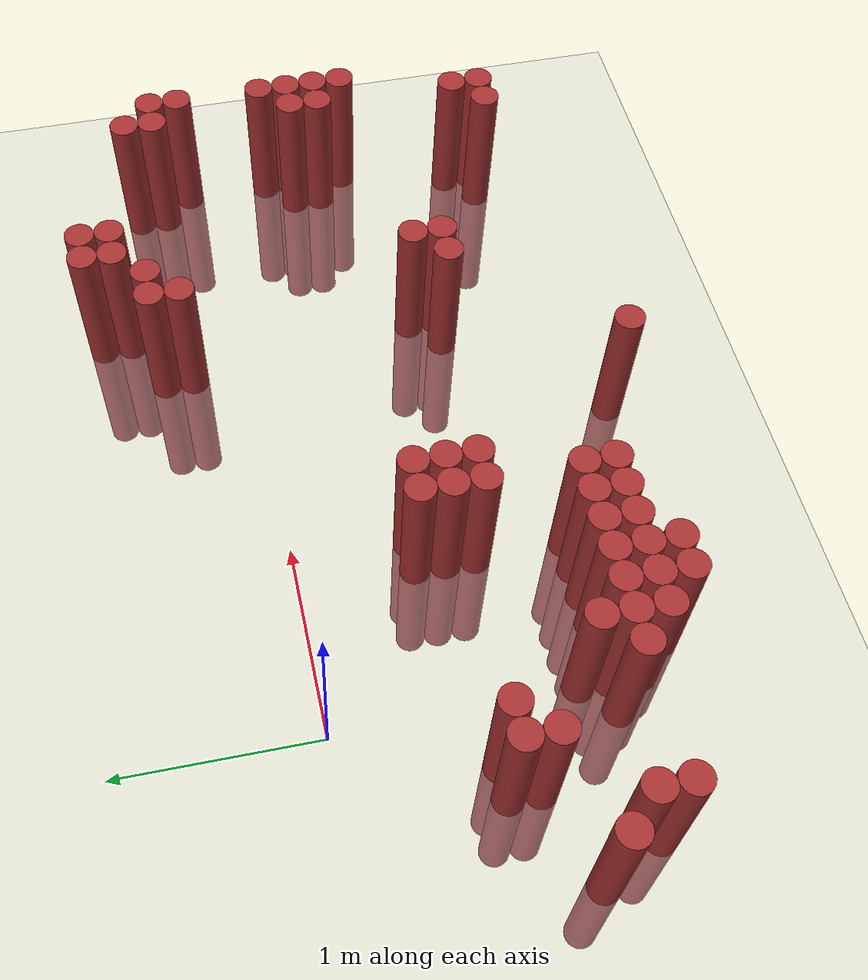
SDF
<sdf version="1.6">
 <world name="default">
  <model name="ground_plane">
   <static>1</static>
   <link name="link">
    <collision name="collision">
     <geometry><plane><normal>0 0 1</normal><size>100 100</size></plane></geometry>
     <surface><friction><ode><mu>100</mu><mu2>50</mu2></ode></friction></surface>
    </collision>
    <visual name="visual">
     <cast_shadows>0</cast_shadows>
     <geometry><plane><normal>0 0 1</normal><size>100 100</size></plane></geometry>
     <material>
      <script><uri>file://media/materials/scripts/gazebo.material</uri><name>Gazebo/Grey</name></script>
     </material>
    </visual>
   </link>
  </model>
  <model name="unit_cylinder_321">
   <static>1</static>
   <pose>-0.875000 -1.025000 0.000000 0.000000 0.000000 0.000000</pose>
   <link name="link">
    <inertial>
     <mass>1</mass>
     <inertia><ixx>0.145833</ixx><ixy>0</ixy><ixz>0</ixz><iyy>0.145833</iyy><iyz>0</iyz><izz>0.125</izz></inertia>
    </inertial>
    <collision name="collision">
     <geometry><cylinder><radius>0.075000</radius><length>1.5</length></cylinder></geometry>
    </collision>
    <visual name="visual">
     <geometry><cylinder><radius>0.075000</radius><length>1.5</length></cylinder></geometry>
     <material>
      <ambient>0.648000 0.192000 0.192000 1</ambient>
      <diffuse>0.648000 0.192000 0.192000 1</diffuse>
     </material>
     <material>
      <script><name>Gazebo/Grey</name><uri>file://media/materials/scripts/gazebo.material</uri></script>
     </material>
    </visual>
   </link>
  </model>
  <model name="unit_cylinder_324">
   <static>1</static>
   <pose>-0.725000 -1.325000 0.000000 0.000000 0.000000 0.000000</pose>
   <link name="link">
    <inertial>
     <mass>1</mass>
     <inertia><ixx>0.145833</ixx><ixy>0</ixy><ixz>0</ixz><iyy>0.145833</iyy><iyz>0</iyz><izz>0.125</izz></inertia>
    </inertial>
    <collision name="collision">
     <geometry><cylinder><radius>0.075000</radius><length>1.5</length></cylinder></geometry>
    </collision>
    <visual name="visual">
     <geometry><cylinder><radius>0.075000</radius><length>1.5</length></cylinder></geometry>
     <material>
      <ambient>0.648000 0.192000 0.192000 1</ambient>
      <diffuse>0.648000 0.192000 0.192000 1</diffuse>
     </material>
     <material>
      <script><name>Gazebo/Grey</name><uri>file://media/materials/scripts/gazebo.material</uri></script>
     </material>
    </visual>
   </link>
  </model>
  <model name="unit_cylinder_325">
   <static>1</static>
   <pose>-0.725000 -1.175000 0.000000 0.000000 0.000000 0.000000</pose>
   <link name="link">
    <inertial>
     <mass>1</mass>
     <inertia><ixx>0.145833</ixx><ixy>0</ixy><ixz>0</ixz><iyy>0.145833</iyy><iyz>0</iyz><izz>0.125</izz></inertia>
    </inertial>
    <collision name="collision">
     <geometry><cylinder><radius>0.075000</radius><length>1.5</length></cylinder></geometry>
    </collision>
    <visual name="visual">
     <geometry><cylinder><radius>0.075000</radius><length>1.5</length></cylinder></geometry>
     <material>
      <ambient>0.648000 0.192000 0.192000 1</ambient>
      <diffuse>0.648000 0.192000 0.192000 1</diffuse>
     </material>
     <material>
      <script><name>Gazebo/Grey</name><uri>file://media/materials/scripts/gazebo.material</uri></script>
     </material>
    </visual>
   </link>
  </model>
  <model name="unit_cylinder_328">
   <static>1</static>
   <pose>-0.425000 -0.875000 0.000000 0.000000 0.000000 0.000000</pose>
   <link name="link">
    <inertial>
     <mass>1</mass>
     <inertia><ixx>0.145833</ixx><ixy>0</ixy><ixz>0</ixz><iyy>0.145833</iyy><iyz>0</iyz><izz>0.125</izz></inertia>
    </inertial>
    <collision name="collision">
     <geometry><cylinder><radius>0.075000</radius><length>1.5</length></cylinder></geometry>
    </collision>
    <visual name="visual">
     <geometry><cylinder><radius>0.075000</radius><length>1.5</length></cylinder></geometry>
     <material>
      <ambient>0.648000 0.192000 0.192000 1</ambient>
      <diffuse>0.648000 0.192000 0.192000 1</diffuse>
     </material>
     <material>
      <script><name>Gazebo/Grey</name><uri>file://media/materials/scripts/gazebo.material</uri></script>
     </material>
    </visual>
   </link>
  </model>
  <model name="unit_cylinder_329">
   <static>1</static>
   <pose>-0.425000 -0.725000 0.000000 0.000000 0.000000 0.000000</pose>
   <link name="link">
    <inertial>
     <mass>1</mass>
     <inertia><ixx>0.145833</ixx><ixy>0</ixy><ixz>0</ixz><iyy>0.145833</iyy><iyz>0</iyz><izz>0.125</izz></inertia>
    </inertial>
    <collision name="collision">
     <geometry><cylinder><radius>0.075000</radius><length>1.5</length></cylinder></geometry>
    </collision>
    <visual name="visual">
     <geometry><cylinder><radius>0.075000</radius><length>1.5</length></cylinder></geometry>
     <material>
      <ambient>0.648000 0.192000 0.192000 1</ambient>
      <diffuse>0.648000 0.192000 0.192000 1</diffuse>
     </material>
     <material>
      <script><name>Gazebo/Grey</name><uri>file://media/materials/scripts/gazebo.material</uri></script>
     </material>
    </visual>
   </link>
  </model>
  <model name="unit_cylinder_332">
   <static>1</static>
   <pose>-0.275000 -0.725000 0.000000 0.000000 0.000000 0.000000</pose>
   <link name="link">
    <inertial>
     <mass>1</mass>
     <inertia><ixx>0.145833</ixx><ixy>0</ixy><ixz>0</ixz><iyy>0.145833</iyy><iyz>0</iyz><izz>0.125</izz></inertia>
    </inertial>
    <collision name="collision">
     <geometry><cylinder><radius>0.075000</radius><length>1.5</length></cylinder></geometry>
    </collision>
    <visual name="visual">
     <geometry><cylinder><radius>0.075000</radius><length>1.5</length></cylinder></geometry>
     <material>
      <ambient>0.648000 0.192000 0.192000 1</ambient>
      <diffuse>0.648000 0.192000 0.192000 1</diffuse>
     </material>
     <material>
      <script><name>Gazebo/Grey</name><uri>file://media/materials/scripts/gazebo.material</uri></script>
     </material>
    </visual>
   </link>
  </model>
  <model name="unit_cylinder_336">
   <static>1</static>
   <pose>-0.125000 -1.325000 0.000000 0.000000 0.000000 0.000000</pose>
   <link name="link">
    <inertial>
     <mass>1</mass>
     <inertia><ixx>0.145833</ixx><ixy>0</ixy><ixz>0</ixz><iyy>0.145833</iyy><iyz>0</iyz><izz>0.125</izz></inertia>
    </inertial>
    <collision name="collision">
     <geometry><cylinder><radius>0.075000</radius><length>1.5</length></cylinder></geometry>
    </collision>
    <visual name="visual">
     <geometry><cylinder><radius>0.075000</radius><length>1.5</length></cylinder></geometry>
     <material>
      <ambient>0.648000 0.192000 0.192000 1</ambient>
      <diffuse>0.648000 0.192000 0.192000 1</diffuse>
     </material>
     <material>
      <script><name>Gazebo/Grey</name><uri>file://media/materials/scripts/gazebo.material</uri></script>
     </material>
    </visual>
   </link>
  </model>
  <model name="unit_cylinder_339">
   <static>1</static>
   <pose>0.025000 -1.475000 0.000000 0.000000 0.000000 0.000000</pose>
   <link name="link">
    <inertial>
     <mass>1</mass>
     <inertia><ixx>0.145833</ixx><ixy>0</ixy><ixz>0</ixz><iyy>0.145833</iyy><iyz>0</iyz><izz>0.125</izz></inertia>
    </inertial>
    <collision name="collision">
     <geometry><cylinder><radius>0.075000</radius><length>1.5</length></cylinder></geometry>
    </collision>
    <visual name="visual">
     <geometry><cylinder><radius>0.075000</radius><length>1.5</length></cylinder></geometry>
     <material>
      <ambient>0.648000 0.192000 0.192000 1</ambient>
      <diffuse>0.648000 0.192000 0.192000 1</diffuse>
     </material>
     <material>
      <script><name>Gazebo/Grey</name><uri>file://media/materials/scripts/gazebo.material</uri></script>
     </material>
    </visual>
   </link>
  </model>
  <model name="unit_cylinder_340">
   <static>1</static>
   <pose>0.025000 -1.325000 0.000000 0.000000 0.000000 0.000000</pose>
   <link name="link">
    <inertial>
     <mass>1</mass>
     <inertia><ixx>0.145833</ixx><ixy>0</ixy><ixz>0</ixz><iyy>0.145833</iyy><iyz>0</iyz><izz>0.125</izz></inertia>
    </inertial>
    <collision name="collision">
     <geometry><cylinder><radius>0.075000</radius><length>1.5</length></cylinder></geometry>
    </collision>
    <visual name="visual">
     <geometry><cylinder><radius>0.075000</radius><length>1.5</length></cylinder></geometry>
     <material>
      <ambient>0.648000 0.192000 0.192000 1</ambient>
      <diffuse>0.648000 0.192000 0.192000 1</diffuse>
     </material>
     <material>
      <script><name>Gazebo/Grey</name><uri>file://media/materials/scripts/gazebo.material</uri></script>
     </material>
    </visual>
   </link>
  </model>
  <model name="unit_cylinder_341">
   <static>1</static>
   <pose>0.025000 -1.175000 0.000000 0.000000 0.000000 0.000000</pose>
   <link name="link">
    <inertial>
     <mass>1</mass>
     <inertia><ixx>0.145833</ixx><ixy>0</ixy><ixz>0</ixz><iyy>0.145833</iyy><iyz>0</iyz><izz>0.125</izz></inertia>
    </inertial>
    <collision name="collision">
     <geometry><cylinder><radius>0.075000</radius><length>1.5</length></cylinder></geometry>
    </collision>
    <visual name="visual">
     <geometry><cylinder><radius>0.075000</radius><length>1.5</length></cylinder></geometry>
     <material>
      <ambient>0.648000 0.192000 0.192000 1</ambient>
      <diffuse>0.648000 0.192000 0.192000 1</diffuse>
     </material>
     <material>
      <script><name>Gazebo/Grey</name><uri>file://media/materials/scripts/gazebo.material</uri></script>
     </material>
    </visual>
   </link>
  </model>
  <model name="unit_cylinder_345">
   <static>1</static>
   <pose>0.175000 -1.625000 0.000000 0.000000 0.000000 0.000000</pose>
   <link name="link">
    <inertial>
     <mass>1</mass>
     <inertia><ixx>0.145833</ixx><ixy>0</ixy><ixz>0</ixz><iyy>0.145833</iyy><iyz>0</iyz><izz>0.125</izz></inertia>
    </inertial>
    <collision name="collision">
     <geometry><cylinder><radius>0.075000</radius><length>1.5</length></cylinder></geometry>
    </collision>
    <visual name="visual">
     <geometry><cylinder><radius>0.075000</radius><length>1.5</length></cylinder></geometry>
     <material>
      <ambient>0.648000 0.192000 0.192000 1</ambient>
      <diffuse>0.648000 0.192000 0.192000 1</diffuse>
     </material>
     <material>
      <script><name>Gazebo/Grey</name><uri>file://media/materials/scripts/gazebo.material</uri></script>
     </material>
    </visual>
   </link>
  </model>
  <model name="unit_cylinder_346">
   <static>1</static>
   <pose>0.175000 -1.475000 0.000000 0.000000 0.000000 0.000000</pose>
   <link name="link">
    <inertial>
     <mass>1</mass>
     <inertia><ixx>0.145833</ixx><ixy>0</ixy><ixz>0</ixz><iyy>0.145833</iyy><iyz>0</iyz><izz>0.125</izz></inertia>
    </inertial>
    <collision name="collision">
     <geometry><cylinder><radius>0.075000</radius><length>1.5</length></cylinder></geometry>
    </collision>
    <visual name="visual">
     <geometry><cylinder><radius>0.075000</radius><length>1.5</length></cylinder></geometry>
     <material>
      <ambient>0.648000 0.192000 0.192000 1</ambient>
      <diffuse>0.648000 0.192000 0.192000 1</diffuse>
     </material>
     <material>
      <script><name>Gazebo/Grey</name><uri>file://media/materials/scripts/gazebo.material</uri></script>
     </material>
    </visual>
   </link>
  </model>
  <model name="unit_cylinder_347">
   <static>1</static>
   <pose>0.175000 -1.325000 0.000000 0.000000 0.000000 0.000000</pose>
   <link name="link">
    <inertial>
     <mass>1</mass>
     <inertia><ixx>0.145833</ixx><ixy>0</ixy><ixz>0</ixz><iyy>0.145833</iyy><iyz>0</iyz><izz>0.125</izz></inertia>
    </inertial>
    <collision name="collision">
     <geometry><cylinder><radius>0.075000</radius><length>1.5</length></cylinder></geometry>
    </collision>
    <visual name="visual">
     <geometry><cylinder><radius>0.075000</radius><length>1.5</length></cylinder></geometry>
     <material>
      <ambient>0.648000 0.192000 0.192000 1</ambient>
      <diffuse>0.648000 0.192000 0.192000 1</diffuse>
     </material>
     <material>
      <script><name>Gazebo/Grey</name><uri>file://media/materials/scripts/gazebo.material</uri></script>
     </material>
    </visual>
   </link>
  </model>
  <model name="unit_cylinder_352">
   <static>1</static>
   <pose>0.325000 -1.625000 0.000000 0.000000 0.000000 0.000000</pose>
   <link name="link">
    <inertial>
     <mass>1</mass>
     <inertia><ixx>0.145833</ixx><ixy>0</ixy><ixz>0</ixz><iyy>0.145833</iyy><iyz>0</iyz><izz>0.125</izz></inertia>
    </inertial>
    <collision name="collision">
     <geometry><cylinder><radius>0.075000</radius><length>1.5</length></cylinder></geometry>
    </collision>
    <visual name="visual">
     <geometry><cylinder><radius>0.075000</radius><length>1.5</length></cylinder></geometry>
     <material>
      <ambient>0.648000 0.192000 0.192000 1</ambient>
      <diffuse>0.648000 0.192000 0.192000 1</diffuse>
     </material>
     <material>
      <script><name>Gazebo/Grey</name><uri>file://media/materials/scripts/gazebo.material</uri></script>
     </material>
    </visual>
   </link>
  </model>
  <model name="unit_cylinder_353">
   <static>1</static>
   <pose>0.325000 -1.475000 0.000000 0.000000 0.000000 0.000000</pose>
   <link name="link">
    <inertial>
     <mass>1</mass>
     <inertia><ixx>0.145833</ixx><ixy>0</ixy><ixz>0</ixz><iyy>0.145833</iyy><iyz>0</iyz><izz>0.125</izz></inertia>
    </inertial>
    <collision name="collision">
     <geometry><cylinder><radius>0.075000</radius><length>1.5</length></cylinder></geometry>
    </collision>
    <visual name="visual">
     <geometry><cylinder><radius>0.075000</radius><length>1.5</length></cylinder></geometry>
     <material>
      <ambient>0.648000 0.192000 0.192000 1</ambient>
      <diffuse>0.648000 0.192000 0.192000 1</diffuse>
     </material>
     <material>
      <script><name>Gazebo/Grey</name><uri>file://media/materials/scripts/gazebo.material</uri></script>
     </material>
    </visual>
   </link>
  </model>
  <model name="unit_cylinder_354">
   <static>1</static>
   <pose>0.325000 -1.325000 0.000000 0.000000 0.000000 0.000000</pose>
   <link name="link">
    <inertial>
     <mass>1</mass>
     <inertia><ixx>0.145833</ixx><ixy>0</ixy><ixz>0</ixz><iyy>0.145833</iyy><iyz>0</iyz><izz>0.125</izz></inertia>
    </inertial>
    <collision name="collision">
     <geometry><cylinder><radius>0.075000</radius><length>1.5</length></cylinder></geometry>
    </collision>
    <visual name="visual">
     <geometry><cylinder><radius>0.075000</radius><length>1.5</length></cylinder></geometry>
     <material>
      <ambient>0.648000 0.192000 0.192000 1</ambient>
      <diffuse>0.648000 0.192000 0.192000 1</diffuse>
     </material>
     <material>
      <script><name>Gazebo/Grey</name><uri>file://media/materials/scripts/gazebo.material</uri></script>
     </material>
    </visual>
   </link>
  </model>
  <model name="unit_cylinder_360">
   <static>1</static>
   <pose>0.475000 -1.475000 0.000000 0.000000 0.000000 0.000000</pose>
   <link name="link">
    <inertial>
     <mass>1</mass>
     <inertia><ixx>0.145833</ixx><ixy>0</ixy><ixz>0</ixz><iyy>0.145833</iyy><iyz>0</iyz><izz>0.125</izz></inertia>
    </inertial>
    <collision name="collision">
     <geometry><cylinder><radius>0.075000</radius><length>1.5</length></cylinder></geometry>
    </collision>
    <visual name="visual">
     <geometry><cylinder><radius>0.075000</radius><length>1.5</length></cylinder></geometry>
     <material>
      <ambient>0.648000 0.192000 0.192000 1</ambient>
      <diffuse>0.648000 0.192000 0.192000 1</diffuse>
     </material>
     <material>
      <script><name>Gazebo/Grey</name><uri>file://media/materials/scripts/gazebo.material</uri></script>
     </material>
    </visual>
   </link>
  </model>
  <model name="unit_cylinder_361">
   <static>1</static>
   <pose>0.475000 -1.325000 0.000000 0.000000 0.000000 0.000000</pose>
   <link name="link">
    <inertial>
     <mass>1</mass>
     <inertia><ixx>0.145833</ixx><ixy>0</ixy><ixz>0</ixz><iyy>0.145833</iyy><iyz>0</iyz><izz>0.125</izz></inertia>
    </inertial>
    <collision name="collision">
     <geometry><cylinder><radius>0.075000</radius><length>1.5</length></cylinder></geometry>
    </collision>
    <visual name="visual">
     <geometry><cylinder><radius>0.075000</radius><length>1.5</length></cylinder></geometry>
     <material>
      <ambient>0.648000 0.192000 0.192000 1</ambient>
      <diffuse>0.648000 0.192000 0.192000 1</diffuse>
     </material>
     <material>
      <script><name>Gazebo/Grey</name><uri>file://media/materials/scripts/gazebo.material</uri></script>
     </material>
    </visual>
   </link>
  </model>
  <model name="unit_cylinder_364">
   <static>1</static>
   <pose>0.625000 -1.475000 0.000000 0.000000 0.000000 0.000000</pose>
   <link name="link">
    <inertial>
     <mass>1</mass>
     <inertia><ixx>0.145833</ixx><ixy>0</ixy><ixz>0</ixz><iyy>0.145833</iyy><iyz>0</iyz><izz>0.125</izz></inertia>
    </inertial>
    <collision name="collision">
     <geometry><cylinder><radius>0.075000</radius><length>1.5</length></cylinder></geometry>
    </collision>
    <visual name="visual">
     <geometry><cylinder><radius>0.075000</radius><length>1.5</length></cylinder></geometry>
     <material>
      <ambient>0.648000 0.192000 0.192000 1</ambient>
      <diffuse>0.648000 0.192000 0.192000 1</diffuse>
     </material>
     <material>
      <script><name>Gazebo/Grey</name><uri>file://media/materials/scripts/gazebo.material</uri></script>
     </material>
    </visual>
   </link>
  </model>
  <model name="unit_cylinder_365">
   <static>1</static>
   <pose>0.625000 -1.325000 0.000000 0.000000 0.000000 0.000000</pose>
   <link name="link">
    <inertial>
     <mass>1</mass>
     <inertia><ixx>0.145833</ixx><ixy>0</ixy><ixz>0</ixz><iyy>0.145833</iyy><iyz>0</iyz><izz>0.125</izz></inertia>
    </inertial>
    <collision name="collision">
     <geometry><cylinder><radius>0.075000</radius><length>1.5</length></cylinder></geometry>
    </collision>
    <visual name="visual">
     <geometry><cylinder><radius>0.075000</radius><length>1.5</length></cylinder></geometry>
     <material>
      <ambient>0.648000 0.192000 0.192000 1</ambient>
      <diffuse>0.648000 0.192000 0.192000 1</diffuse>
     </material>
     <material>
      <script><name>Gazebo/Grey</name><uri>file://media/materials/scripts/gazebo.material</uri></script>
     </material>
    </visual>
   </link>
  </model>
  <model name="unit_cylinder_366">
   <static>1</static>
   <pose>0.775000 -1.475000 0.000000 0.000000 0.000000 0.000000</pose>
   <link name="link">
    <inertial>
     <mass>1</mass>
     <inertia><ixx>0.145833</ixx><ixy>0</ixy><ixz>0</ixz><iyy>0.145833</iyy><iyz>0</iyz><izz>0.125</izz></inertia>
    </inertial>
    <collision name="collision">
     <geometry><cylinder><radius>0.075000</radius><length>1.5</length></cylinder></geometry>
    </collision>
    <visual name="visual">
     <geometry><cylinder><radius>0.075000</radius><length>1.5</length></cylinder></geometry>
     <material>
      <ambient>0.648000 0.192000 0.192000 1</ambient>
      <diffuse>0.648000 0.192000 0.192000 1</diffuse>
     </material>
     <material>
      <script><name>Gazebo/Grey</name><uri>file://media/materials/scripts/gazebo.material</uri></script>
     </material>
    </visual>
   </link>
  </model>
  <model name="unit_cylinder_367">
   <static>1</static>
   <pose>0.775000 -1.325000 0.000000 0.000000 0.000000 0.000000</pose>
   <link name="link">
    <inertial>
     <mass>1</mass>
     <inertia><ixx>0.145833</ixx><ixy>0</ixy><ixz>0</ixz><iyy>0.145833</iyy><iyz>0</iyz><izz>0.125</izz></inertia>
    </inertial>
    <collision name="collision">
     <geometry><cylinder><radius>0.075000</radius><length>1.5</length></cylinder></geometry>
    </collision>
    <visual name="visual">
     <geometry><cylinder><radius>0.075000</radius><length>1.5</length></cylinder></geometry>
     <material>
      <ambient>0.648000 0.192000 0.192000 1</ambient>
      <diffuse>0.648000 0.192000 0.192000 1</diffuse>
     </material>
     <material>
      <script><name>Gazebo/Grey</name><uri>file://media/materials/scripts/gazebo.material</uri></script>
     </material>
    </visual>
   </link>
  </model>
  <model name="unit_cylinder_368">
   <static>1</static>
   <pose>0.775000 -0.875000 0.000000 0.000000 0.000000 0.000000</pose>
   <link name="link">
    <inertial>
     <mass>1</mass>
     <inertia><ixx>0.145833</ixx><ixy>0</ixy><ixz>0</ixz><iyy>0.145833</iyy><iyz>0</iyz><izz>0.125</izz></inertia>
    </inertial>
    <collision name="collision">
     <geometry><cylinder><radius>0.075000</radius><length>1.5</length></cylinder></geometry>
    </collision>
    <visual name="visual">
     <geometry><cylinder><radius>0.075000</radius><length>1.5</length></cylinder></geometry>
     <material>
      <ambient>0.648000 0.192000 0.192000 1</ambient>
      <diffuse>0.648000 0.192000 0.192000 1</diffuse>
     </material>
     <material>
      <script><name>Gazebo/Grey</name><uri>file://media/materials/scripts/gazebo.material</uri></script>
     </material>
    </visual>
   </link>
  </model>
  <model name="unit_cylinder_369">
   <static>1</static>
   <pose>0.775000 -0.725000 0.000000 0.000000 0.000000 0.000000</pose>
   <link name="link">
    <inertial>
     <mass>1</mass>
     <inertia><ixx>0.145833</ixx><ixy>0</ixy><ixz>0</ixz><iyy>0.145833</iyy><iyz>0</iyz><izz>0.125</izz></inertia>
    </inertial>
    <collision name="collision">
     <geometry><cylinder><radius>0.075000</radius><length>1.5</length></cylinder></geometry>
    </collision>
    <visual name="visual">
     <geometry><cylinder><radius>0.075000</radius><length>1.5</length></cylinder></geometry>
     <material>
      <ambient>0.648000 0.192000 0.192000 1</ambient>
      <diffuse>0.648000 0.192000 0.192000 1</diffuse>
     </material>
     <material>
      <script><name>Gazebo/Grey</name><uri>file://media/materials/scripts/gazebo.material</uri></script>
     </material>
    </visual>
   </link>
  </model>
  <model name="unit_cylinder_370">
   <static>1</static>
   <pose>0.775000 -0.575000 0.000000 0.000000 0.000000 0.000000</pose>
   <link name="link">
    <inertial>
     <mass>1</mass>
     <inertia><ixx>0.145833</ixx><ixy>0</ixy><ixz>0</ixz><iyy>0.145833</iyy><iyz>0</iyz><izz>0.125</izz></inertia>
    </inertial>
    <collision name="collision">
     <geometry><cylinder><radius>0.075000</radius><length>1.5</length></cylinder></geometry>
    </collision>
    <visual name="visual">
     <geometry><cylinder><radius>0.075000</radius><length>1.5</length></cylinder></geometry>
     <material>
      <ambient>0.648000 0.192000 0.192000 1</ambient>
      <diffuse>0.648000 0.192000 0.192000 1</diffuse>
     </material>
     <material>
      <script><name>Gazebo/Grey</name><uri>file://media/materials/scripts/gazebo.material</uri></script>
     </material>
    </visual>
   </link>
  </model>
  <model name="unit_cylinder_371">
   <static>1</static>
   <pose>0.925000 -0.875000 0.000000 0.000000 0.000000 0.000000</pose>
   <link name="link">
    <inertial>
     <mass>1</mass>
     <inertia><ixx>0.145833</ixx><ixy>0</ixy><ixz>0</ixz><iyy>0.145833</iyy><iyz>0</iyz><izz>0.125</izz></inertia>
    </inertial>
    <collision name="collision">
     <geometry><cylinder><radius>0.075000</radius><length>1.5</length></cylinder></geometry>
    </collision>
    <visual name="visual">
     <geometry><cylinder><radius>0.075000</radius><length>1.5</length></cylinder></geometry>
     <material>
      <ambient>0.648000 0.192000 0.192000 1</ambient>
      <diffuse>0.648000 0.192000 0.192000 1</diffuse>
     </material>
     <material>
      <script><name>Gazebo/Grey</name><uri>file://media/materials/scripts/gazebo.material</uri></script>
     </material>
    </visual>
   </link>
  </model>
  <model name="unit_cylinder_372">
   <static>1</static>
   <pose>0.925000 -0.725000 0.000000 0.000000 0.000000 0.000000</pose>
   <link name="link">
    <inertial>
     <mass>1</mass>
     <inertia><ixx>0.145833</ixx><ixy>0</ixy><ixz>0</ixz><iyy>0.145833</iyy><iyz>0</iyz><izz>0.125</izz></inertia>
    </inertial>
    <collision name="collision">
     <geometry><cylinder><radius>0.075000</radius><length>1.5</length></cylinder></geometry>
    </collision>
    <visual name="visual">
     <geometry><cylinder><radius>0.075000</radius><length>1.5</length></cylinder></geometry>
     <material>
      <ambient>0.648000 0.192000 0.192000 1</ambient>
      <diffuse>0.648000 0.192000 0.192000 1</diffuse>
     </material>
     <material>
      <script><name>Gazebo/Grey</name><uri>file://media/materials/scripts/gazebo.material</uri></script>
     </material>
    </visual>
   </link>
  </model>
  <model name="unit_cylinder_373">
   <static>1</static>
   <pose>0.925000 -0.575000 0.000000 0.000000 0.000000 0.000000</pose>
   <link name="link">
    <inertial>
     <mass>1</mass>
     <inertia><ixx>0.145833</ixx><ixy>0</ixy><ixz>0</ixz><iyy>0.145833</iyy><iyz>0</iyz><izz>0.125</izz></inertia>
    </inertial>
    <collision name="collision">
     <geometry><cylinder><radius>0.075000</radius><length>1.5</length></cylinder></geometry>
    </collision>
    <visual name="visual">
     <geometry><cylinder><radius>0.075000</radius><length>1.5</length></cylinder></geometry>
     <material>
      <ambient>0.648000 0.192000 0.192000 1</ambient>
      <diffuse>0.648000 0.192000 0.192000 1</diffuse>
     </material>
     <material>
      <script><name>Gazebo/Grey</name><uri>file://media/materials/scripts/gazebo.material</uri></script>
     </material>
    </visual>
   </link>
  </model>
  <model name="unit_cylinder_378">
   <static>1</static>
   <pose>1.525000 -1.775000 0.000000 0.000000 0.000000 0.000000</pose>
   <link name="link">
    <inertial>
     <mass>1</mass>
     <inertia><ixx>0.145833</ixx><ixy>0</ixy><ixz>0</ixz><iyy>0.145833</iyy><iyz>0</iyz><izz>0.125</izz></inertia>
    </inertial>
    <collision name="collision">
     <geometry><cylinder><radius>0.075000</radius><length>1.5</length></cylinder></geometry>
    </collision>
    <visual name="visual">
     <geometry><cylinder><radius>0.075000</radius><length>1.5</length></cylinder></geometry>
     <material>
      <ambient>0.648000 0.192000 0.192000 1</ambient>
      <diffuse>0.648000 0.192000 0.192000 1</diffuse>
     </material>
     <material>
      <script><name>Gazebo/Grey</name><uri>file://media/materials/scripts/gazebo.material</uri></script>
     </material>
    </visual>
   </link>
  </model>
  <model name="unit_cylinder_393">
   <static>1</static>
   <pose>2.125000 -1.025000 0.000000 0.000000 0.000000 0.000000</pose>
   <link name="link">
    <inertial>
     <mass>1</mass>
     <inertia><ixx>0.145833</ixx><ixy>0</ixy><ixz>0</ixz><iyy>0.145833</iyy><iyz>0</iyz><izz>0.125</izz></inertia>
    </inertial>
    <collision name="collision">
     <geometry><cylinder><radius>0.075000</radius><length>1.5</length></cylinder></geometry>
    </collision>
    <visual name="visual">
     <geometry><cylinder><radius>0.075000</radius><length>1.5</length></cylinder></geometry>
     <material>
      <ambient>0.648000 0.192000 0.192000 1</ambient>
      <diffuse>0.648000 0.192000 0.192000 1</diffuse>
     </material>
     <material>
      <script><name>Gazebo/Grey</name><uri>file://media/materials/scripts/gazebo.material</uri></script>
     </material>
    </visual>
   </link>
  </model>
  <model name="unit_cylinder_394">
   <static>1</static>
   <pose>2.125000 0.325000 0.000000 0.000000 0.000000 0.000000</pose>
   <link name="link">
    <inertial>
     <mass>1</mass>
     <inertia><ixx>0.145833</ixx><ixy>0</ixy><ixz>0</ixz><iyy>0.145833</iyy><iyz>0</iyz><izz>0.125</izz></inertia>
    </inertial>
    <collision name="collision">
     <geometry><cylinder><radius>0.075000</radius><length>1.5</length></cylinder></geometry>
    </collision>
    <visual name="visual">
     <geometry><cylinder><radius>0.075000</radius><length>1.5</length></cylinder></geometry>
     <material>
      <ambient>0.648000 0.192000 0.192000 1</ambient>
      <diffuse>0.648000 0.192000 0.192000 1</diffuse>
     </material>
     <material>
      <script><name>Gazebo/Grey</name><uri>file://media/materials/scripts/gazebo.material</uri></script>
     </material>
    </visual>
   </link>
  </model>
  <model name="unit_cylinder_395">
   <static>1</static>
   <pose>2.125000 0.475000 0.000000 0.000000 0.000000 0.000000</pose>
   <link name="link">
    <inertial>
     <mass>1</mass>
     <inertia><ixx>0.145833</ixx><ixy>0</ixy><ixz>0</ixz><iyy>0.145833</iyy><iyz>0</iyz><izz>0.125</izz></inertia>
    </inertial>
    <collision name="collision">
     <geometry><cylinder><radius>0.075000</radius><length>1.5</length></cylinder></geometry>
    </collision>
    <visual name="visual">
     <geometry><cylinder><radius>0.075000</radius><length>1.5</length></cylinder></geometry>
     <material>
      <ambient>0.648000 0.192000 0.192000 1</ambient>
      <diffuse>0.648000 0.192000 0.192000 1</diffuse>
     </material>
     <material>
      <script><name>Gazebo/Grey</name><uri>file://media/materials/scripts/gazebo.material</uri></script>
     </material>
    </visual>
   </link>
  </model>
  <model name="unit_cylinder_397">
   <static>1</static>
   <pose>2.275000 -1.025000 0.000000 0.000000 0.000000 0.000000</pose>
   <link name="link">
    <inertial>
     <mass>1</mass>
     <inertia><ixx>0.145833</ixx><ixy>0</ixy><ixz>0</ixz><iyy>0.145833</iyy><iyz>0</iyz><izz>0.125</izz></inertia>
    </inertial>
    <collision name="collision">
     <geometry><cylinder><radius>0.075000</radius><length>1.5</length></cylinder></geometry>
    </collision>
    <visual name="visual">
     <geometry><cylinder><radius>0.075000</radius><length>1.5</length></cylinder></geometry>
     <material>
      <ambient>0.648000 0.192000 0.192000 1</ambient>
      <diffuse>0.648000 0.192000 0.192000 1</diffuse>
     </material>
     <material>
      <script><name>Gazebo/Grey</name><uri>file://media/materials/scripts/gazebo.material</uri></script>
     </material>
    </visual>
   </link>
  </model>
  <model name="unit_cylinder_398">
   <static>1</static>
   <pose>2.275000 -0.875000 0.000000 0.000000 0.000000 0.000000</pose>
   <link name="link">
    <inertial>
     <mass>1</mass>
     <inertia><ixx>0.145833</ixx><ixy>0</ixy><ixz>0</ixz><iyy>0.145833</iyy><iyz>0</iyz><izz>0.125</izz></inertia>
    </inertial>
    <collision name="collision">
     <geometry><cylinder><radius>0.075000</radius><length>1.5</length></cylinder></geometry>
    </collision>
    <visual name="visual">
     <geometry><cylinder><radius>0.075000</radius><length>1.5</length></cylinder></geometry>
     <material>
      <ambient>0.648000 0.192000 0.192000 1</ambient>
      <diffuse>0.648000 0.192000 0.192000 1</diffuse>
     </material>
     <material>
      <script><name>Gazebo/Grey</name><uri>file://media/materials/scripts/gazebo.material</uri></script>
     </material>
    </visual>
   </link>
  </model>
  <model name="unit_cylinder_399">
   <static>1</static>
   <pose>2.275000 0.475000 0.000000 0.000000 0.000000 0.000000</pose>
   <link name="link">
    <inertial>
     <mass>1</mass>
     <inertia><ixx>0.145833</ixx><ixy>0</ixy><ixz>0</ixz><iyy>0.145833</iyy><iyz>0</iyz><izz>0.125</izz></inertia>
    </inertial>
    <collision name="collision">
     <geometry><cylinder><radius>0.075000</radius><length>1.5</length></cylinder></geometry>
    </collision>
    <visual name="visual">
     <geometry><cylinder><radius>0.075000</radius><length>1.5</length></cylinder></geometry>
     <material>
      <ambient>0.648000 0.192000 0.192000 1</ambient>
      <diffuse>0.648000 0.192000 0.192000 1</diffuse>
     </material>
     <material>
      <script><name>Gazebo/Grey</name><uri>file://media/materials/scripts/gazebo.material</uri></script>
     </material>
    </visual>
   </link>
  </model>
  <model name="unit_cylinder_405">
   <static>1</static>
   <pose>2.425000 0.625000 0.000000 0.000000 0.000000 0.000000</pose>
   <link name="link">
    <inertial>
     <mass>1</mass>
     <inertia><ixx>0.145833</ixx><ixy>0</ixy><ixz>0</ixz><iyy>0.145833</iyy><iyz>0</iyz><izz>0.125</izz></inertia>
    </inertial>
    <collision name="collision">
     <geometry><cylinder><radius>0.075000</radius><length>1.5</length></cylinder></geometry>
    </collision>
    <visual name="visual">
     <geometry><cylinder><radius>0.075000</radius><length>1.5</length></cylinder></geometry>
     <material>
      <ambient>0.648000 0.192000 0.192000 1</ambient>
      <diffuse>0.648000 0.192000 0.192000 1</diffuse>
     </material>
     <material>
      <script><name>Gazebo/Grey</name><uri>file://media/materials/scripts/gazebo.material</uri></script>
     </material>
    </visual>
   </link>
  </model>
  <model name="unit_cylinder_406">
   <static>1</static>
   <pose>2.425000 0.775000 0.000000 0.000000 0.000000 0.000000</pose>
   <link name="link">
    <inertial>
     <mass>1</mass>
     <inertia><ixx>0.145833</ixx><ixy>0</ixy><ixz>0</ixz><iyy>0.145833</iyy><iyz>0</iyz><izz>0.125</izz></inertia>
    </inertial>
    <collision name="collision">
     <geometry><cylinder><radius>0.075000</radius><length>1.5</length></cylinder></geometry>
    </collision>
    <visual name="visual">
     <geometry><cylinder><radius>0.075000</radius><length>1.5</length></cylinder></geometry>
     <material>
      <ambient>0.648000 0.192000 0.192000 1</ambient>
      <diffuse>0.648000 0.192000 0.192000 1</diffuse>
     </material>
     <material>
      <script><name>Gazebo/Grey</name><uri>file://media/materials/scripts/gazebo.material</uri></script>
     </material>
    </visual>
   </link>
  </model>
  <model name="unit_cylinder_411">
   <static>1</static>
   <pose>2.575000 0.625000 0.000000 0.000000 0.000000 0.000000</pose>
   <link name="link">
    <inertial>
     <mass>1</mass>
     <inertia><ixx>0.145833</ixx><ixy>0</ixy><ixz>0</ixz><iyy>0.145833</iyy><iyz>0</iyz><izz>0.125</izz></inertia>
    </inertial>
    <collision name="collision">
     <geometry><cylinder><radius>0.075000</radius><length>1.5</length></cylinder></geometry>
    </collision>
    <visual name="visual">
     <geometry><cylinder><radius>0.075000</radius><length>1.5</length></cylinder></geometry>
     <material>
      <ambient>0.648000 0.192000 0.192000 1</ambient>
      <diffuse>0.648000 0.192000 0.192000 1</diffuse>
     </material>
     <material>
      <script><name>Gazebo/Grey</name><uri>file://media/materials/scripts/gazebo.material</uri></script>
     </material>
    </visual>
   </link>
  </model>
  <model name="unit_cylinder_412">
   <static>1</static>
   <pose>2.575000 0.775000 0.000000 0.000000 0.000000 0.000000</pose>
   <link name="link">
    <inertial>
     <mass>1</mass>
     <inertia><ixx>0.145833</ixx><ixy>0</ixy><ixz>0</ixz><iyy>0.145833</iyy><iyz>0</iyz><izz>0.125</izz></inertia>
    </inertial>
    <collision name="collision">
     <geometry><cylinder><radius>0.075000</radius><length>1.5</length></cylinder></geometry>
    </collision>
    <visual name="visual">
     <geometry><cylinder><radius>0.075000</radius><length>1.5</length></cylinder></geometry>
     <material>
      <ambient>0.648000 0.192000 0.192000 1</ambient>
      <diffuse>0.648000 0.192000 0.192000 1</diffuse>
     </material>
     <material>
      <script><name>Gazebo/Grey</name><uri>file://media/materials/scripts/gazebo.material</uri></script>
     </material>
    </visual>
   </link>
  </model>
  <model name="unit_cylinder_419">
   <static>1</static>
   <pose>3.175000 -1.475000 0.000000 0.000000 0.000000 0.000000</pose>
   <link name="link">
    <inertial>
     <mass>1</mass>
     <inertia><ixx>0.145833</ixx><ixy>0</ixy><ixz>0</ixz><iyy>0.145833</iyy><iyz>0</iyz><izz>0.125</izz></inertia>
    </inertial>
    <collision name="collision">
     <geometry><cylinder><radius>0.075000</radius><length>1.5</length></cylinder></geometry>
    </collision>
    <visual name="visual">
     <geometry><cylinder><radius>0.075000</radius><length>1.5</length></cylinder></geometry>
     <material>
      <ambient>0.648000 0.192000 0.192000 1</ambient>
      <diffuse>0.648000 0.192000 0.192000 1</diffuse>
     </material>
     <material>
      <script><name>Gazebo/Grey</name><uri>file://media/materials/scripts/gazebo.material</uri></script>
     </material>
    </visual>
   </link>
  </model>
  <model name="unit_cylinder_421">
   <static>1</static>
   <pose>3.325000 -1.475000 0.000000 0.000000 0.000000 0.000000</pose>
   <link name="link">
    <inertial>
     <mass>1</mass>
     <inertia><ixx>0.145833</ixx><ixy>0</ixy><ixz>0</ixz><iyy>0.145833</iyy><iyz>0</iyz><izz>0.125</izz></inertia>
    </inertial>
    <collision name="collision">
     <geometry><cylinder><radius>0.075000</radius><length>1.5</length></cylinder></geometry>
    </collision>
    <visual name="visual">
     <geometry><cylinder><radius>0.075000</radius><length>1.5</length></cylinder></geometry>
     <material>
      <ambient>0.648000 0.192000 0.192000 1</ambient>
      <diffuse>0.648000 0.192000 0.192000 1</diffuse>
     </material>
     <material>
      <script><name>Gazebo/Grey</name><uri>file://media/materials/scripts/gazebo.material</uri></script>
     </material>
    </visual>
   </link>
  </model>
  <model name="unit_cylinder_422">
   <static>1</static>
   <pose>3.325000 -1.325000 0.000000 0.000000 0.000000 0.000000</pose>
   <link name="link">
    <inertial>
     <mass>1</mass>
     <inertia><ixx>0.145833</ixx><ixy>0</ixy><ixz>0</ixz><iyy>0.145833</iyy><iyz>0</iyz><izz>0.125</izz></inertia>
    </inertial>
    <collision name="collision">
     <geometry><cylinder><radius>0.075000</radius><length>1.5</length></cylinder></geometry>
    </collision>
    <visual name="visual">
     <geometry><cylinder><radius>0.075000</radius><length>1.5</length></cylinder></geometry>
     <material>
      <ambient>0.648000 0.192000 0.192000 1</ambient>
      <diffuse>0.648000 0.192000 0.192000 1</diffuse>
     </material>
     <material>
      <script><name>Gazebo/Grey</name><uri>file://media/materials/scripts/gazebo.material</uri></script>
     </material>
    </visual>
   </link>
  </model>
  <model name="unit_cylinder_423">
   <static>1</static>
   <pose>3.325000 -0.575000 0.000000 0.000000 0.000000 0.000000</pose>
   <link name="link">
    <inertial>
     <mass>1</mass>
     <inertia><ixx>0.145833</ixx><ixy>0</ixy><ixz>0</ixz><iyy>0.145833</iyy><iyz>0</iyz><izz>0.125</izz></inertia>
    </inertial>
    <collision name="collision">
     <geometry><cylinder><radius>0.075000</radius><length>1.5</length></cylinder></geometry>
    </collision>
    <visual name="visual">
     <geometry><cylinder><radius>0.075000</radius><length>1.5</length></cylinder></geometry>
     <material>
      <ambient>0.648000 0.192000 0.192000 1</ambient>
      <diffuse>0.648000 0.192000 0.192000 1</diffuse>
     </material>
     <material>
      <script><name>Gazebo/Grey</name><uri>file://media/materials/scripts/gazebo.material</uri></script>
     </material>
    </visual>
   </link>
  </model>
  <model name="unit_cylinder_424">
   <static>1</static>
   <pose>3.325000 -0.425000 0.000000 0.000000 0.000000 0.000000</pose>
   <link name="link">
    <inertial>
     <mass>1</mass>
     <inertia><ixx>0.145833</ixx><ixy>0</ixy><ixz>0</ixz><iyy>0.145833</iyy><iyz>0</iyz><izz>0.125</izz></inertia>
    </inertial>
    <collision name="collision">
     <geometry><cylinder><radius>0.075000</radius><length>1.5</length></cylinder></geometry>
    </collision>
    <visual name="visual">
     <geometry><cylinder><radius>0.075000</radius><length>1.5</length></cylinder></geometry>
     <material>
      <ambient>0.648000 0.192000 0.192000 1</ambient>
      <diffuse>0.648000 0.192000 0.192000 1</diffuse>
     </material>
     <material>
      <script><name>Gazebo/Grey</name><uri>file://media/materials/scripts/gazebo.material</uri></script>
     </material>
    </visual>
   </link>
  </model>
  <model name="unit_cylinder_425">
   <static>1</static>
   <pose>3.325000 0.325000 0.000000 0.000000 0.000000 0.000000</pose>
   <link name="link">
    <inertial>
     <mass>1</mass>
     <inertia><ixx>0.145833</ixx><ixy>0</ixy><ixz>0</ixz><iyy>0.145833</iyy><iyz>0</iyz><izz>0.125</izz></inertia>
    </inertial>
    <collision name="collision">
     <geometry><cylinder><radius>0.075000</radius><length>1.5</length></cylinder></geometry>
    </collision>
    <visual name="visual">
     <geometry><cylinder><radius>0.075000</radius><length>1.5</length></cylinder></geometry>
     <material>
      <ambient>0.648000 0.192000 0.192000 1</ambient>
      <diffuse>0.648000 0.192000 0.192000 1</diffuse>
     </material>
     <material>
      <script><name>Gazebo/Grey</name><uri>file://media/materials/scripts/gazebo.material</uri></script>
     </material>
    </visual>
   </link>
  </model>
  <model name="unit_cylinder_426">
   <static>1</static>
   <pose>3.325000 0.475000 0.000000 0.000000 0.000000 0.000000</pose>
   <link name="link">
    <inertial>
     <mass>1</mass>
     <inertia><ixx>0.145833</ixx><ixy>0</ixy><ixz>0</ixz><iyy>0.145833</iyy><iyz>0</iyz><izz>0.125</izz></inertia>
    </inertial>
    <collision name="collision">
     <geometry><cylinder><radius>0.075000</radius><length>1.5</length></cylinder></geometry>
    </collision>
    <visual name="visual">
     <geometry><cylinder><radius>0.075000</radius><length>1.5</length></cylinder></geometry>
     <material>
      <ambient>0.648000 0.192000 0.192000 1</ambient>
      <diffuse>0.648000 0.192000 0.192000 1</diffuse>
     </material>
     <material>
      <script><name>Gazebo/Grey</name><uri>file://media/materials/scripts/gazebo.material</uri></script>
     </material>
    </visual>
   </link>
  </model>
  <model name="unit_cylinder_431">
   <static>1</static>
   <pose>3.475000 -0.725000 0.000000 0.000000 0.000000 0.000000</pose>
   <link name="link">
    <inertial>
     <mass>1</mass>
     <inertia><ixx>0.145833</ixx><ixy>0</ixy><ixz>0</ixz><iyy>0.145833</iyy><iyz>0</iyz><izz>0.125</izz></inertia>
    </inertial>
    <collision name="collision">
     <geometry><cylinder><radius>0.075000</radius><length>1.5</length></cylinder></geometry>
    </collision>
    <visual name="visual">
     <geometry><cylinder><radius>0.075000</radius><length>1.5</length></cylinder></geometry>
     <material>
      <ambient>0.648000 0.192000 0.192000 1</ambient>
      <diffuse>0.648000 0.192000 0.192000 1</diffuse>
     </material>
     <material>
      <script><name>Gazebo/Grey</name><uri>file://media/materials/scripts/gazebo.material</uri></script>
     </material>
    </visual>
   </link>
  </model>
  <model name="unit_cylinder_432">
   <static>1</static>
   <pose>3.475000 -0.575000 0.000000 0.000000 0.000000 0.000000</pose>
   <link name="link">
    <inertial>
     <mass>1</mass>
     <inertia><ixx>0.145833</ixx><ixy>0</ixy><ixz>0</ixz><iyy>0.145833</iyy><iyz>0</iyz><izz>0.125</izz></inertia>
    </inertial>
    <collision name="collision">
     <geometry><cylinder><radius>0.075000</radius><length>1.5</length></cylinder></geometry>
    </collision>
    <visual name="visual">
     <geometry><cylinder><radius>0.075000</radius><length>1.5</length></cylinder></geometry>
     <material>
      <ambient>0.648000 0.192000 0.192000 1</ambient>
      <diffuse>0.648000 0.192000 0.192000 1</diffuse>
     </material>
     <material>
      <script><name>Gazebo/Grey</name><uri>file://media/materials/scripts/gazebo.material</uri></script>
     </material>
    </visual>
   </link>
  </model>
  <model name="unit_cylinder_433">
   <static>1</static>
   <pose>3.475000 -0.425000 0.000000 0.000000 0.000000 0.000000</pose>
   <link name="link">
    <inertial>
     <mass>1</mass>
     <inertia><ixx>0.145833</ixx><ixy>0</ixy><ixz>0</ixz><iyy>0.145833</iyy><iyz>0</iyz><izz>0.125</izz></inertia>
    </inertial>
    <collision name="collision">
     <geometry><cylinder><radius>0.075000</radius><length>1.5</length></cylinder></geometry>
    </collision>
    <visual name="visual">
     <geometry><cylinder><radius>0.075000</radius><length>1.5</length></cylinder></geometry>
     <material>
      <ambient>0.648000 0.192000 0.192000 1</ambient>
      <diffuse>0.648000 0.192000 0.192000 1</diffuse>
     </material>
     <material>
      <script><name>Gazebo/Grey</name><uri>file://media/materials/scripts/gazebo.material</uri></script>
     </material>
    </visual>
   </link>
  </model>
  <model name="unit_cylinder_434">
   <static>1</static>
   <pose>3.475000 -0.275000 0.000000 0.000000 0.000000 0.000000</pose>
   <link name="link">
    <inertial>
     <mass>1</mass>
     <inertia><ixx>0.145833</ixx><ixy>0</ixy><ixz>0</ixz><iyy>0.145833</iyy><iyz>0</iyz><izz>0.125</izz></inertia>
    </inertial>
    <collision name="collision">
     <geometry><cylinder><radius>0.075000</radius><length>1.5</length></cylinder></geometry>
    </collision>
    <visual name="visual">
     <geometry><cylinder><radius>0.075000</radius><length>1.5</length></cylinder></geometry>
     <material>
      <ambient>0.648000 0.192000 0.192000 1</ambient>
      <diffuse>0.648000 0.192000 0.192000 1</diffuse>
     </material>
     <material>
      <script><name>Gazebo/Grey</name><uri>file://media/materials/scripts/gazebo.material</uri></script>
     </material>
    </visual>
   </link>
  </model>
  <model name="unit_cylinder_435">
   <static>1</static>
   <pose>3.475000 0.175000 0.000000 0.000000 0.000000 0.000000</pose>
   <link name="link">
    <inertial>
     <mass>1</mass>
     <inertia><ixx>0.145833</ixx><ixy>0</ixy><ixz>0</ixz><iyy>0.145833</iyy><iyz>0</iyz><izz>0.125</izz></inertia>
    </inertial>
    <collision name="collision">
     <geometry><cylinder><radius>0.075000</radius><length>1.5</length></cylinder></geometry>
    </collision>
    <visual name="visual">
     <geometry><cylinder><radius>0.075000</radius><length>1.5</length></cylinder></geometry>
     <material>
      <ambient>0.648000 0.192000 0.192000 1</ambient>
      <diffuse>0.648000 0.192000 0.192000 1</diffuse>
     </material>
     <material>
      <script><name>Gazebo/Grey</name><uri>file://media/materials/scripts/gazebo.material</uri></script>
     </material>
    </visual>
   </link>
  </model>
  <model name="unit_cylinder_436">
   <static>1</static>
   <pose>3.475000 0.325000 0.000000 0.000000 0.000000 0.000000</pose>
   <link name="link">
    <inertial>
     <mass>1</mass>
     <inertia><ixx>0.145833</ixx><ixy>0</ixy><ixz>0</ixz><iyy>0.145833</iyy><iyz>0</iyz><izz>0.125</izz></inertia>
    </inertial>
    <collision name="collision">
     <geometry><cylinder><radius>0.075000</radius><length>1.5</length></cylinder></geometry>
    </collision>
    <visual name="visual">
     <geometry><cylinder><radius>0.075000</radius><length>1.5</length></cylinder></geometry>
     <material>
      <ambient>0.648000 0.192000 0.192000 1</ambient>
      <diffuse>0.648000 0.192000 0.192000 1</diffuse>
     </material>
     <material>
      <script><name>Gazebo/Grey</name><uri>file://media/materials/scripts/gazebo.material</uri></script>
     </material>
    </visual>
   </link>
  </model>
 </world>
</sdf>
